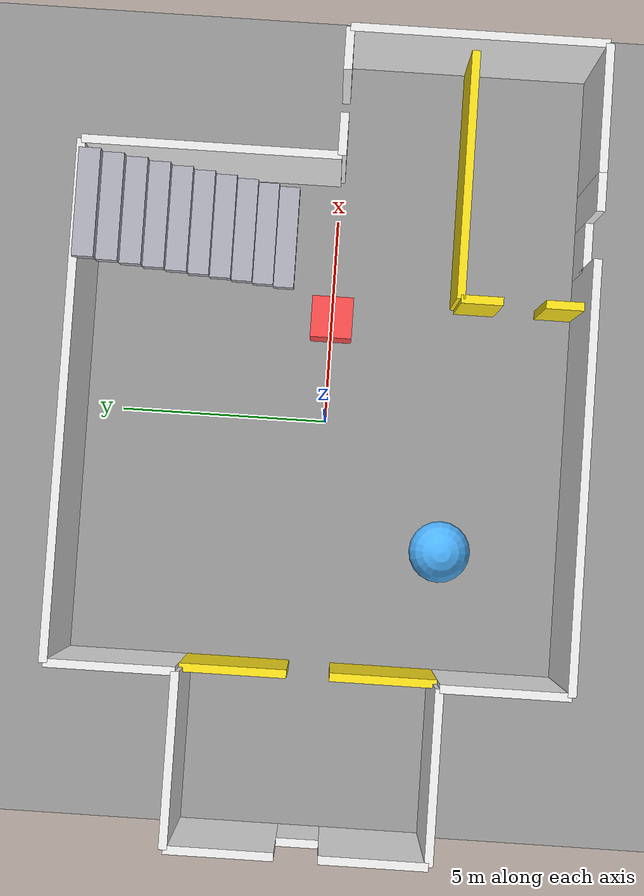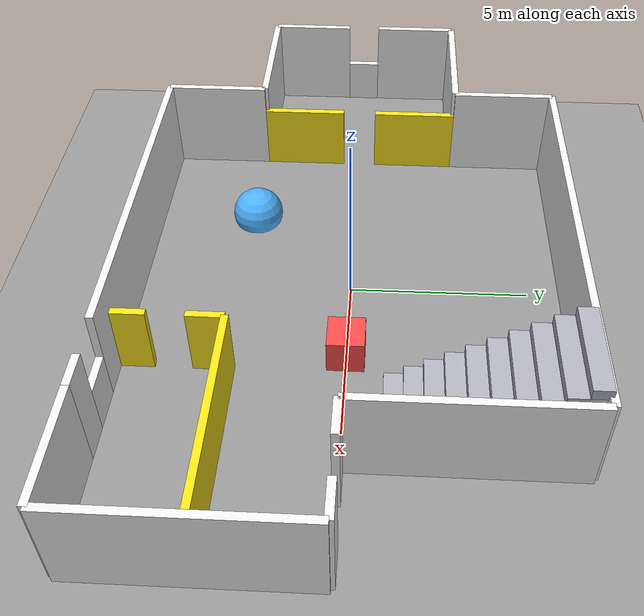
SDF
<sdf version="1.8">
 <world name="church">
  <physics name="1ms" type="ignored">
   <max_step_size>0.001</max_step_size>
   <real_time_factor>1.0</real_time_factor>
  </physics>
  <plugin filename="gz-sim-physics-system" name="gz::sim::systems::Physics"/>
  <plugin filename="gz-sim-user-commands-system" name="gz::sim::systems::UserCommands"/>
  <plugin filename="gz-sim-scene-broadcaster-system" name="gz::sim::systems::SceneBroadcaster"/>
  <plugin filename="gz-sim-sensors-system" name="gz::sim::systems::Sensors">
   <render_engine>ogre2</render_engine>
  </plugin>
  <model name="sphere_model">
   <pose>-3 -3 0.25 0 0 0</pose>
   <static>false</static>
   <link name="link_sphere">
    <collision name="collision_sphere"><geometry><sphere><radius>0.75</radius></sphere></geometry></collision>
    <visual name="visual_sphere">
     <geometry><sphere><radius>0.75</radius></sphere></geometry>
     <material><ambient>0.2 0.5 0.8 1</ambient><diffuse>0.3 0.7 1 1</diffuse></material>
    </visual>
   </link>
  </model>
  <model name="box_model">
   <pose>2.5 0 0.5 0 0 0</pose>
   <static>false</static>
   <link name="link_box">
    <collision name="collision_box"><geometry><box><size>1 1 1</size></box></geometry></collision>
    <visual name="visual_box">
     <geometry><box><size>1 1 1</size></box></geometry>
     <material><ambient>0.2 0.5 0.8 1</ambient><diffuse>1 0.3 0.3 1</diffuse></material>
    </visual>
   </link>
  </model>
  <light type="directional" name="sun">
   <pose>0 0 10 0 0 0</pose>
   <cast_shadows>false</cast_shadows>
   <diffuse>0.85 0.85 0.85 1</diffuse>
   <specular>0.2 0.2 0.2 1</specular>
   <direction>-0.4 0.2 -1.0</direction>
  </light>
  <light type="point" name="face-light">
   <pose>-5.5 4 2 0 0 0</pose>
   <cast_shadows>false</cast_shadows>
   <intensity>0.3</intensity>
   <diffuse>1 1 1 1</diffuse>
   <specular>0.2 0.2 0.2 1</specular>
   <attenuation>
    <range>15</range>
    <linear>0.01</linear>
    <constant>0.5</constant>
    <quadratic>0.001</quadratic>
   </attenuation>
  </light>
  <model name="floor">
   <static>true</static>
   <link name="floor_01">
    <collision name="col"><geometry><plane><normal>0 0 1</normal><size>20 20</size></plane></geometry></collision>
    <visual name="vis">
     <geometry><plane><normal>0 0 1</normal><size>20 20</size></plane></geometry>
     <material><diffuse>0.6 0.6 0.6 1</diffuse><specular>0.1 0.1 0.1 1</specular></material>
    </visual>
   </link>
  </model>
  <model name="walls_compound">
   <static>true</static>
   <link name="mid_north">
    <pose>0 6 1.4 0 0 0</pose>
    <collision name="col"><geometry><box><size>12 0.2 2.8</size></box></geometry></collision>
    <visual name="vis">
     <geometry><box><size>12 0.2 2.8</size></box></geometry>
     <material><diffuse>0.95 0.95 0.95 1</diffuse></material>
    </visual>
   </link>
   <link name="mid_east_upper">
    <pose>6 3 1.4 0 0 0</pose>
    <collision name="col"><geometry><box><size>0.2 6 2.8</size></box></geometry></collision>
    <visual name="vis">
     <geometry><box><size>0.2 6 2.8</size></box></geometry>
     <material><diffuse>0.95 0.95 0.95 1</diffuse></material>
    </visual>
   </link>
   <link name="mid_south_wall">
    <pose>-1 -6 1.4 0 0 0</pose>
    <collision name="col"><geometry><box><size>10 0.2 2.8</size></box></geometry></collision>
    <visual name="vis">
     <geometry><box><size>10 0.2 2.8</size></box></geometry>
     <material><diffuse>0.95 0.95 0.95 1</diffuse></material>
    </visual>
   </link>
   <link name="mid_south_right_piece">
    <pose>5.55 -6 1.4 0 0 0</pose>
    <collision name="col"><geometry><box><size>0.9 0.2 2.8</size></box></geometry></collision>
    <visual name="vis">
     <geometry><box><size>0.9 0.2 2.8</size></box></geometry>
     <material><diffuse>0.95 0.95 0.95 1</diffuse></material>
    </visual>
   </link>
   <link name="mid_west_upper">
    <pose>-6 4.5 1.4 0 0 0</pose>
    <collision name="col"><geometry><box><size>0.2 3 2.8</size></box></geometry></collision>
    <visual name="vis">
     <geometry><box><size>0.2 3 2.8</size></box></geometry>
     <material><diffuse>0.95 0.95 0.95 1</diffuse></material>
    </visual>
   </link>
   <link name="mid_west_lower">
    <pose>-6 -4.5 1.4 0 0 0</pose>
    <collision name="col"><geometry><box><size>0.2 3 2.8</size></box></geometry></collision>
    <visual name="vis">
     <geometry><box><size>0.2 3 2.8</size></box></geometry>
     <material><diffuse>0.95 0.95 0.95 1</diffuse></material>
    </visual>
   </link>
   <link name="right_top_left_piece">
    <pose>6.5 0 1.4 0 0 0</pose>
    <collision name="col"><geometry><box><size>1.0 0.2 2.8</size></box></geometry></collision>
    <visual name="vis">
     <geometry><box><size>1.0 0.2 2.8</size></box></geometry>
     <material><diffuse>0.95 0.95 0.95 1</diffuse></material>
    </visual>
   </link>
   <link name="right_top_right_piece">
    <pose>8.5 0 1.4 0 0 0</pose>
    <collision name="col"><geometry><box><size>1.0 0.2 2.8</size></box></geometry></collision>
    <visual name="vis">
     <geometry><box><size>1.0 0.2 2.8</size></box></geometry>
     <material><diffuse>0.95 0.95 0.95 1</diffuse></material>
    </visual>
   </link>
   <link name="right_east">
    <pose>9 -3 1.4 0 0 0</pose>
    <collision name="col"><geometry><box><size>0.2 6 2.8</size></box></geometry></collision>
    <visual name="vis">
     <geometry><box><size>0.2 6 2.8</size></box></geometry>
     <material><diffuse>0.95 0.95 0.95 1</diffuse></material>
    </visual>
   </link>
   <link name="right_south">
    <pose>7.5 -6 1.4 0 0 0</pose>
    <collision name="col"><geometry><box><size>3 0.2 2.8</size></box></geometry></collision>
    <visual name="vis">
     <geometry><box><size>3 0.2 2.8</size></box></geometry>
     <material><diffuse>0.95 0.95 0.95 1</diffuse></material>
    </visual>
   </link>
   <link name="right_inner_yellow">
    <pose>6.0 -3 1.0 0 0 0</pose>
    <collision name="col"><geometry><box><size>6.0 0.2 2.0</size></box></geometry></collision>
    <visual name="vis">
     <geometry><box><size>6.0 0.2 2.0</size></box></geometry>
     <material><diffuse>1.0 0.9 0.1 1</diffuse></material>
    </visual>
   </link>
   <link name="bottom_inner_yellow1">
    <pose>3 -3.5 1.0 0 0 0</pose>
    <collision name="col"><geometry><box><size>0.2 1 2.0</size></box></geometry></collision>
    <visual name="vis">
     <geometry><box><size>0.2 1 2.0</size></box></geometry>
     <material><diffuse>1.0 0.9 0.1 1</diffuse></material>
    </visual>
   </link>
   <link name="bottom_inner_yellow2">
    <pose>3 -5.5 1.0 0 0 0</pose>
    <collision name="col"><geometry><box><size>0.2 1 2.0</size></box></geometry></collision>
    <visual name="vis">
     <geometry><box><size>0.2 1 2.0</size></box></geometry>
     <material><diffuse>1.0 0.9 0.1 1</diffuse></material>
    </visual>
   </link>
   <link name="mid_west_inner_upper">
    <pose>-6 1.75 1.0 0 0 0</pose>
    <collision name="col"><geometry><box><size>0.2 2.5 2.0</size></box></geometry></collision>
    <visual name="vis">
     <geometry><box><size>0.2 2.5 2.0</size></box></geometry>
     <material><diffuse>1.0 0.9 0.1 1</diffuse></material>
    </visual>
   </link>
   <link name="mid_west_inner_lower">
    <pose>-6 -1.75 1.0 0 0 0</pose>
    <collision name="col"><geometry><box><size>0.2 2.5 2.0</size></box></geometry></collision>
    <visual name="vis">
     <geometry><box><size>0.2 2.5 2.0</size></box></geometry>
     <material><diffuse>1.0 0.9 0.1 1</diffuse></material>
    </visual>
   </link>
   <link name="left_north">
    <pose>-8 3 1.4 0 0 0</pose>
    <collision name="col"><geometry><box><size>4 0.2 2.8</size></box></geometry></collision>
    <visual name="vis">
     <geometry><box><size>4 0.2 2.8</size></box></geometry>
     <material><diffuse>0.95 0.95 0.95 1</diffuse></material>
    </visual>
   </link>
   <link name="left_west_bottom_piece">
    <pose>-10 -1.75 1.4 0 0 0</pose>
    <collision name="col"><geometry><box><size>0.2 2.5 2.8</size></box></geometry></collision>
    <visual name="vis">
     <geometry><box><size>0.2 2.5 2.8</size></box></geometry>
     <material><diffuse>0.95 0.95 0.95 1</diffuse></material>
    </visual>
   </link>
   <link name="left_west_top_piece">
    <pose>-10 1.75 1.4 0 0 0</pose>
    <collision name="col"><geometry><box><size>0.2 2.5 2.8</size></box></geometry></collision>
    <visual name="vis">
     <geometry><box><size>0.2 2.5 2.8</size></box></geometry>
     <material><diffuse>0.95 0.95 0.95 1</diffuse></material>
    </visual>
   </link>
   <link name="left_south">
    <pose>-8 -3 1.4 0 0 0</pose>
    <collision name="col"><geometry><box><size>4 0.2 2.8</size></box></geometry></collision>
    <visual name="vis">
     <geometry><box><size>4 0.2 2.8</size></box></geometry>
     <material><diffuse>0.95 0.95 0.95 1</diffuse></material>
    </visual>
   </link>
   <link name="window_mid_south_visual">
    <pose>4.5 -6 0.7 0 0 0</pose>
    <collision name="col"><geometry><box><size>1.0 0.2 2.8</size></box></geometry></collision>
    <visual name="vis">
     <geometry><box><size>1.2 0.2 1.4</size></box></geometry>
     <material><diffuse>0.95 0.95 0.95 1</diffuse></material>
    </visual>
   </link>
   <link name="window_west_visual">
    <pose>-10 0 0.7 0 0 0</pose>
    <collision name="col"><geometry><box><size>0.2 1 1.4</size></box></geometry></collision>
    <visual name="vis">
     <geometry><box><size>0.2 1 1.4</size></box></geometry>
     <material><diffuse>0.95 0.95 0.95 1</diffuse></material>
    </visual>
   </link>
   <link name="stair_step_0">
    <pose>4.5 1.25 0.15 0 0 0</pose>
    <collision name="col"><geometry><box><size>3 0.5 0.3</size></box></geometry></collision>
    <visual name="vis">
     <geometry><box><size>2.5 0.5 0.3</size></box></geometry>
     <material><diffuse>0.7 0.7 0.75 1</diffuse></material>
    </visual>
   </link>
   <link name="stair_step_1">
    <pose>4.5 1.75 0.45 0 0 0</pose>
    <collision name="col"><geometry><box><size>3 0.5 0.3</size></box></geometry></collision>
    <visual name="vis">
     <geometry><box><size>2.5 0.5 0.3</size></box></geometry>
     <material><diffuse>0.7 0.7 0.75 1</diffuse></material>
    </visual>
   </link>
   <link name="stair_step_2">
    <pose>4.5 2.25 0.75 0 0 0</pose>
    <collision name="col"><geometry><box><size>3 0.5 0.3</size></box></geometry></collision>
    <visual name="vis">
     <geometry><box><size>2.5 0.5 0.3</size></box></geometry>
     <material><diffuse>0.7 0.7 0.75 1</diffuse></material>
    </visual>
   </link>
   <link name="stair_step_3">
    <pose>4.5 2.75 1.05 0 0 0</pose>
    <collision name="col"><geometry><box><size>3 0.5 0.3</size></box></geometry></collision>
    <visual name="vis">
     <geometry><box><size>2.5 0.5 0.3</size></box></geometry>
     <material><diffuse>0.7 0.7 0.75 1</diffuse></material>
    </visual>
   </link>
   <link name="stair_step_4">
    <pose>4.5 3.25 1.35 0 0 0</pose>
    <collision name="col"><geometry><box><size>3 0.5 0.3</size></box></geometry></collision>
    <visual name="vis">
     <geometry><box><size>2.5 0.5 0.3</size></box></geometry>
     <material><diffuse>0.7 0.7 0.75 1</diffuse></material>
    </visual>
   </link>
   <link name="stair_step_5">
    <pose>4.5 3.75 1.65 0 0 0</pose>
    <collision name="col"><geometry><box><size>3 0.5 0.3</size></box></geometry></collision>
    <visual name="vis">
     <geometry><box><size>2.5 0.5 0.3</size></box></geometry>
     <material><diffuse>0.7 0.7 0.75 1</diffuse></material>
    </visual>
   </link>
   <link name="stair_step_6">
    <pose>4.5 4.25 1.95 0 0 0</pose>
    <collision name="col"><geometry><box><size>3 0.5 0.3</size></box></geometry></collision>
    <visual name="vis">
     <geometry><box><size>2.5 0.5 0.3</size></box></geometry>
     <material><diffuse>0.7 0.7 0.75 1</diffuse></material>
    </visual>
   </link>
   <link name="stair_step_7">
    <pose>4.5 4.75 2.25 0 0 0</pose>
    <collision name="col"><geometry><box><size>3 0.5 0.3</size></box></geometry></collision>
    <visual name="vis">
     <geometry><box><size>2.5 0.5 0.3</size></box></geometry>
     <material><diffuse>0.7 0.7 0.75 1</diffuse></material>
    </visual>
   </link>
   <link name="stair_step_8">
    <pose>4.5 5.25 2.55 0 0 0</pose>
    <collision name="col"><geometry><box><size>3 0.5 0.3</size></box></geometry></collision>
    <visual name="vis">
     <geometry><box><size>2.5 0.5 0.3</size></box></geometry>
     <material><diffuse>0.7 0.7 0.75 1</diffuse></material>
    </visual>
   </link>
   <link name="stair_step_9">
    <pose>4.5 5.75 2.85 0 0 0</pose>
    <collision name="col"><geometry><box><size>3 0.5 0.3</size></box></geometry></collision>
    <visual name="vis">
     <geometry><box><size>2.5 0.5 0.3</size></box></geometry>
     <material><diffuse>0.7 0.7 0.75 1</diffuse></material>
    </visual>
   </link>
  </model>
 </world>
</sdf>
